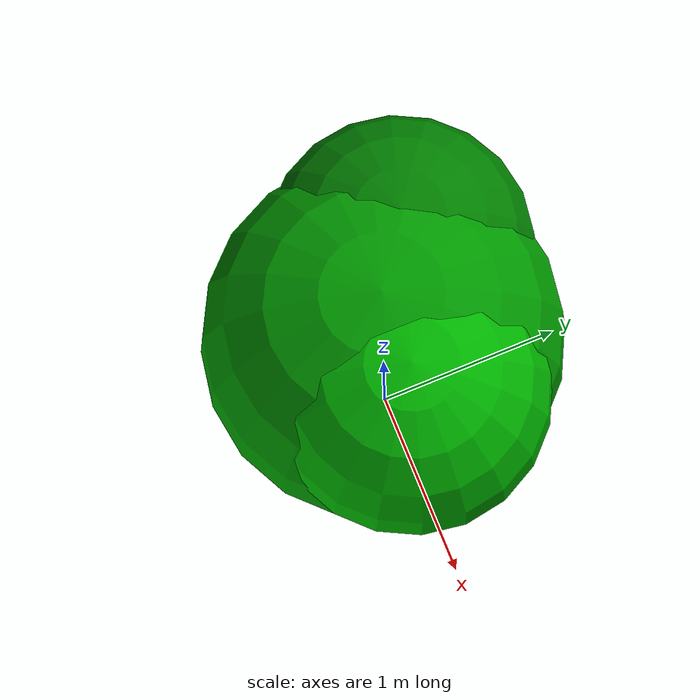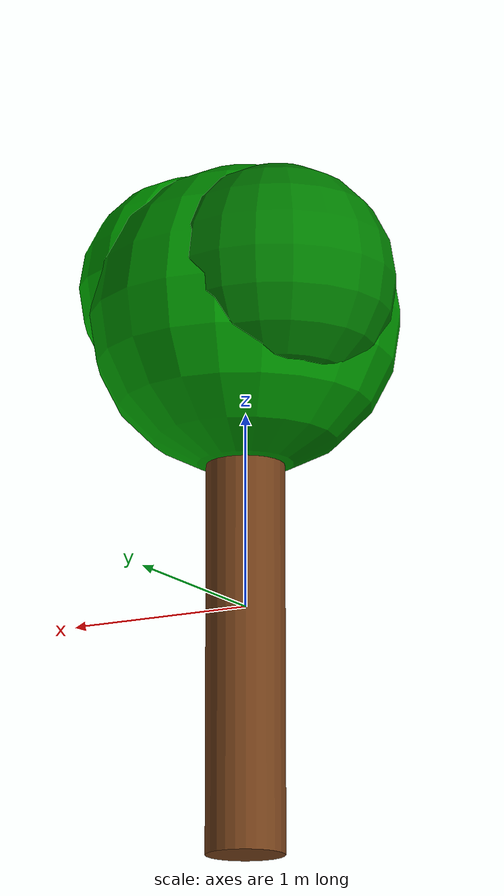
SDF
<sdf version="1.7">
  <model name="tree_model">
    <static>true</static>

    <link name="link">

      <!-- TRUNK -->
      <visual name="trunk">
        <geometry>
          <cylinder>
            <radius>0.2</radius>
            <length>2.5</length>
          </cylinder>
        </geometry>
        <material>
          <ambient>0.45 0.25 0.1 1</ambient>
          <diffuse>0.45 0.25 0.1 1</diffuse>
        </material>
      </visual>

      <collision name="trunk_collision">
        <geometry>
          <cylinder>
            <radius>0.25</radius>
            <length>2.5</length>
          </cylinder>
        </geometry>
      </collision>

      <!-- LEAVES (MULTI LAYERS FOR REAL LOOK) -->
      <visual name="leaves1">
        <pose>0 0 1.5 0 0 0</pose>
        <geometry>
          <sphere>
            <radius>0.8</radius>
          </sphere>
        </geometry>
        <material>
          <ambient>0.0 0.6 0.0 1</ambient>
          <diffuse>0.0 0.6 0.0 1</diffuse>
        </material>
      </visual>

      <visual name="leaves2">
        <pose>0.3 0 1.7 0 0 0</pose>
        <geometry>
          <sphere>
            <radius>0.6</radius>
          </sphere>
        </geometry>
        <material>
          <ambient>0.0 0.7 0.0 1</ambient>
          <diffuse>0.0 0.7 0.0 1</diffuse>
        </material>
      </visual>

      <visual name="leaves3">
        <pose>-0.3 0.2 1.6 0 0 0</pose>
        <geometry>
          <sphere>
            <radius>0.6</radius>
          </sphere>
        </geometry>
        <material>
          <ambient>0.0 0.5 0.0 1</ambient>
          <diffuse>0.0 0.5 0.0 1</diffuse>
        </material>
      </visual>

    </link>
  </model>
</sdf>
